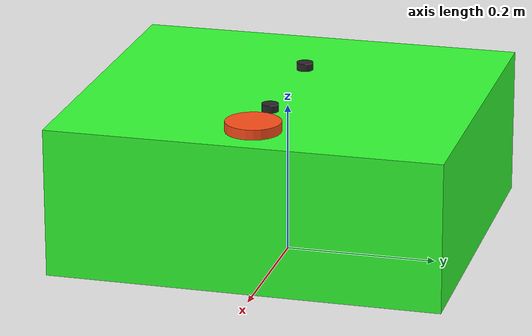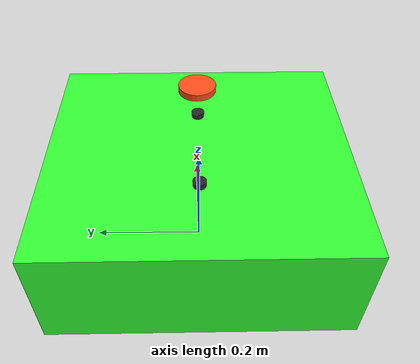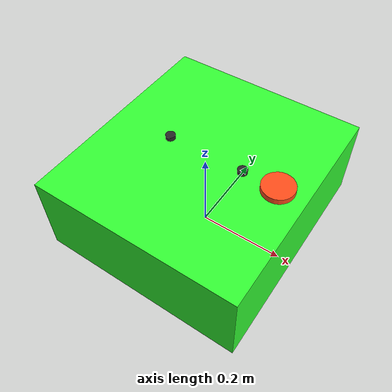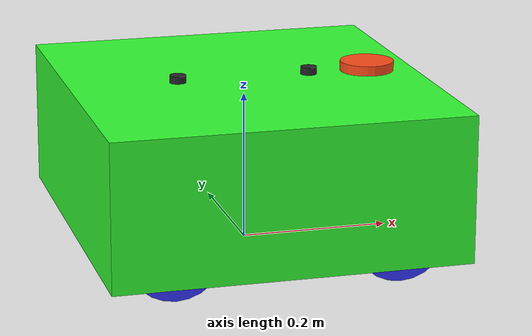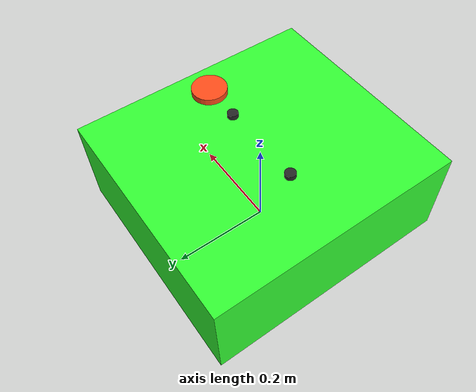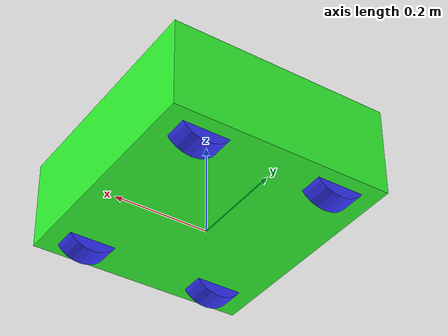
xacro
<?xml version="1.0"?>
<robot xmlns:xacro="http://www.ros.org/wiki/xacro" name="mecanum_bot">

  <xacro:include filename="color_include.xacro" />
  <xacro:include filename="robot_core.xacro" />

  <!-- Gazebo materials, sensor plugins, collision tweaks -->
  <xacro:include filename="gazebo.xacro"/>

  <!-- Gazebo control plugins (omni drive, joint state, etc.) -->
  <xacro:include filename="gazebo_control.xacro"/>

  <!-- LIDAR sensor(s): disable if not needed to reduce CPU -->
  <xacro:include filename="lidar.xacro"/>

  <xacro:include filename="IMU.xacro"/>

  <!-- Cameras: biggest performance hit; comment out to speed up simulation -->
  <xacro:include filename="camera.xacro"/>

</robot>

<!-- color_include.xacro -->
<robot xmlns:xacro="http://www.ros.org/wiki/xacro" >

    <!-- Specify some colours -->

    <material name="white">
        <color rgba="1 1 1 1"/>
    </material>

    <material name="orange">
        <color rgba="1 0.3 0.1 1"/>
    </material>

    <material name="blue">
        <color rgba="0.2 0.2 1 1"/>
    </material>

</robot>

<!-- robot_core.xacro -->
<robot xmlns:xacro="http://www.ros.org/wiki/xacro" >

    <xacro:include filename="inertial_macros.xacro"/>

	  <link name="base_link">
	    <inertial>
	      <origin xyz="0 0 0" rpy="0 0 0"/>
	      <mass value="25.0"/>
	      <inertia ixx="0.2" ixy="0.0" ixz="0.0"
		       iyy="0.2" iyz="0.0"
		       izz="0.2"/>
	    </inertial>

          <visual>
	      <origin xyz="0 0 0.1235" rpy="0 0 0"/>
	      <geometry>
	        <box size="0.472 0.515 0.196"/>
	      </geometry>
	      <material name="green">
	         <color rgba="0.2 1 0.2 1"/>
	      </material>
	  </visual>

          <!-- Retractable trolley support pins shown retracted during approach.
               Keep these visual-only until the physical actuator/joint is added. -->
          <visual>
	      <origin xyz="0.090175 0 0.2265" rpy="0 0 0"/>
	      <geometry>
	        <cylinder radius="0.011" length="0.010"/>
	      </geometry>
	      <material name="dark_grey">
	         <color rgba="0.15 0.15 0.15 1"/>
	      </material>
	  </visual>

          <visual>
	      <origin xyz="-0.090175 0 0.2265" rpy="0 0 0"/>
	      <geometry>
	        <cylinder radius="0.011" length="0.010"/>
	      </geometry>
	      <material name="dark_grey">
	         <color rgba="0.15 0.15 0.15 1"/>
	      </material>
	  </visual>

	    <!-- Simple collision box using your real robot size -->
	    <collision>
	      <origin xyz="0 0 0.1235" rpy="0 0 0"/>
	      <geometry>
		<box size="0.472 0.515 0.196"/>
	      </geometry>
	    </collision>
	  </link>

	  <!-- =========================
	       Wheels
	       ========================= -->

	  <!-- Front Left wheel -->
	  <link name="wheel_fl">
	    <visual>
	      <origin xyz="0 0 0" rpy="-1.5708 0 0"/>
	      <geometry>
                 <cylinder radius="0.0635" length="0.051"/>
              </geometry>
	      <material name="blue" />
	    </visual>
	    <collision>
	      <origin xyz="0 0 0" rpy="1.5708 0 0"/>
	      <geometry>
		<!-- wheel radius/width are placeholders -->
		<cylinder radius="0.0635" length="0.051"/>
	      </geometry>
	    </collision>
	    <inertial>
	      <origin xyz="0 0 0" rpy="0 0 0"/>
	      <mass value="0.8"/>
	      <inertia ixx="0.01" ixy="0.0" ixz="0.0"
		       iyy="0.01" iyz="0.0"
		       izz="0.01"/>
	    </inertial>
	  </link>

	  <!-- Front Right wheel -->
	  <link name="wheel_fr">
	    <visual>
	      <origin xyz="0 0 0" rpy="1.5708 0 0"/>
	      <geometry>
                 <cylinder radius="0.0635" length="0.051"/>
              </geometry>
	      <material name="blue" />
	    </visual>
	    <collision>
	      <origin xyz="0 0 0" rpy="1.5708 0 0"/>
	      <geometry>
		<cylinder radius="0.0635" length="0.051"/>
	      </geometry>
	    </collision>
	    <inertial>
	      <origin xyz="0 0 0" rpy="0 0 0"/>
	      <mass value="0.8"/>
	      <inertia ixx="0.01" ixy="0.0" ixz="0.0"
		       iyy="0.01" iyz="0.0"
		       izz="0.01"/>
	    </inertial>
	  </link>

	  <!-- Rear Left wheel -->
	  <link name="wheel_rl">
	    <visual>
	      <origin xyz="0 0 0" rpy="-1.5708 0 0"/>
	      <geometry>
                 <cylinder radius="0.0635" length="0.051"/>
              </geometry>
	      <material name="blue" />
	    </visual>
	    <collision>
	      <origin xyz="0 0 0" rpy="1.5708 0 0"/>
	      <geometry>
		<cylinder radius="0.0635" length="0.051"/>
	      </geometry>
	    </collision>
	    <inertial>
	      <origin xyz="0 0 0" rpy="0 0 0"/>
	      <mass value="0.8"/>
	      <inertia ixx="0.01" ixy="0.0" ixz="0.0"
		       iyy="0.01" iyz="0.0"
		       izz="0.01"/>
	    </inertial>
	  </link>

	  <!-- Rear Right wheel -->
	  <link name="wheel_rr">
	    <visual>
	      <origin xyz="0 0 0" rpy="1.5708 0 0"/>
	      <geometry>
                 <cylinder radius="0.0635" length="0.051"/>
              </geometry>
	      <material name="blue" />
	    </visual>
	    <collision>
	      <origin xyz="0 0 0" rpy="1.5708 0 0"/>
	      <geometry>
		<cylinder radius="0.0635" length="0.051"/>
	      </geometry>
	    </collision>
	    <inertial>
	      <origin xyz="0 0 0" rpy="0 0 0"/>
	      <mass value="0.8"/>
	      <inertia ixx="0.01" ixy="0.0" ixz="0.0"
		       iyy="0.01" iyz="0.0"
		       izz="0.01"/>
	    </inertial>
	  </link>

	  <!-- Front Left -->
	  <joint name="wheel_fl_joint" type="continuous">
	    <parent link="base_link"/>
	    <child link="wheel_fl"/>
	    <origin xyz="0.1475 0.2019 0.0635" rpy="0 0 0"/>
	    <axis xyz="0 1 0"/>
	  </joint>

	  <!-- Front Right -->
	  <joint name="wheel_fr_joint" type="continuous">
	    <parent link="base_link"/>
	    <child link="wheel_fr"/>
	    <origin xyz="-0.1475 0.2019 0.0635" rpy="0 0 0"/>
	    <axis xyz="0 1 0"/>
	  </joint>

	  <!-- Rear Left -->
	  <joint name="wheel_rl_joint" type="continuous">
	    <parent link="base_link"/>
	    <child link="wheel_rl"/>
	    <origin xyz="0.1475 -0.2019 0.0635" rpy="0 0 0"/>
	    <axis xyz="0 1 0"/>
	  </joint>

	  <!-- Rear Right -->
	  <joint name="wheel_rr_joint" type="continuous">
	    <parent link="base_link"/>
	    <child link="wheel_rr"/>
	    <origin xyz="-0.1475 -0.2019 0.0635" rpy="0 0 0"/>
	    <axis xyz="0 1 0"/>
	  </joint>

  </robot>

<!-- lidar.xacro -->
<robot xmlns:xacro="http://www.ros.org/wiki/xacro">

  <!-- =========================
         FRONT LIDAR
       ========================= -->

  <link name="lidar_left_link">
    <visual>
      <origin xyz="0 0 0" rpy="0 0 0"/>
      <geometry>
        <cylinder radius="0.03625" length="0.02"/>
      </geometry>
      <material name="orange"/>
    </visual>

    <collision>
      <geometry>
        <cylinder radius="0.03625" length="0.02"/>
      </geometry>
    </collision>

    <xacro:inertial_cylinder mass="0.1" length="0.02" radius="0.03625">
      <origin xyz="0 0 0" rpy="0 0 0"/>
    </xacro:inertial_cylinder>
  </link>

  <!-- FRONT: faces forward -->
  <joint name="lidar_left_joint" type="fixed">
    <parent link="base_link"/>
    <child link="lidar_left_link"/>
    <origin xyz="0.172 0 0.2248" rpy="0 0 0"/>
  </joint>

  <!-- =========================
         GAZEBO SENSORS
       ========================= -->

  <!-- FRONT SENSOR -->
  <gazebo reference="lidar_left_link">
    <material>Gazebo/Orange</material>

    <sensor name="laser_front" type="ray">
      <pose>0 0 0 0 0 0</pose>
      <visualize>false</visualize>
      <update_rate>10</update_rate>

      <ray>
        <scan>
          <horizontal>
            <samples>720</samples>
            <!-- 360° navigation scan for SLAM/Nav2. -->
            <min_angle>-3.14159265</min_angle>
            <max_angle> 3.14159265</max_angle>
          </horizontal>
        </scan>

        <range>
          <min>0.45</min>
          <max>12.0</max>
        </range>
      </ray>

      <plugin name="laser_front_controller" filename="libgazebo_ros_ray_sensor.so">
        <ros>
          <argument>~/out:=left/scan</argument>
        </ros>
        <output_type>sensor_msgs/LaserScan</output_type>
        <frame_name>lidar_left_link</frame_name>
      </plugin>
    </sensor>
  </gazebo>

</robot>

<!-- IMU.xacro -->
<robot xmlns:xacro="http://www.ros.org/wiki/xacro">

  <!-- =========================
         IMU (BNO055)
       ========================= -->

  <link name="imu_link">
    <visual>
      <origin xyz="0 0 0" rpy="0 0 0"/>
      <geometry>
        <box size="0.03 0.03 0.01"/>
      </geometry>
      <material name="blue"/>
    </visual>

    <collision>
      <geometry>
        <box size="0.03 0.03 0.01"/>
      </geometry>
    </collision>
  </link>

  <joint name="imu_joint" type="fixed">
    <parent link="base_link"/>
    <child link="imu_link"/>
    <origin xyz="0 0 0.15" rpy="0 0 0"/>
  </joint>

  <gazebo reference="imu_link">
    <gravity>true</gravity>
    <sensor name="imu_sensor" type="imu">
      <always_on>true</always_on>
      <update_rate>100</update_rate>
      <visualize>true</visualize>
      <topic>__default_topic__</topic>
      <plugin filename="libgazebo_ros_imu_sensor.so" name="imu_plugin">
        <topicName>imu</topicName>
        <bodyName>imu_link</bodyName>
        <updateRateHZ>100.0</updateRateHZ>
        <gaussianNoise>0.0001</gaussianNoise>
        <xyzOffset>0 0 0</xyzOffset>
        <rpyOffset>0 0 0</rpyOffset>
        <frameName>imu_link</frameName>
        <initialOrientationAsReference>true</initialOrientationAsReference>
      </plugin>
      <pose>0 0 0 0 0 0</pose>
    </sensor>
  </gazebo>

</robot>

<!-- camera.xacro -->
<robot xmlns:xacro="http://www.ros.org/wiki/xacro">

  <joint name="camera_front" type="fixed">
    <parent link="base_link"/>
    <child link="camera_front_link"/>
    <origin xyz="0.23314 0 0.06986" rpy="0 -0.436332 0"/>
  </joint>

  <link name="camera_front_link"></link>

  <joint name="camera_front_optical" type="fixed">
    <parent link="camera_front_link"/>
    <child link="camera_front_optical_link"/>
    <origin xyz="0 0 0" rpy="-1.5708 0 -1.5708"/>

  </joint>

  <link name="camera_front_optical_link"></link>

  <gazebo reference="camera_front_link">
   	<sensor name="camera_front" type="camera">
	  <pose>0 0 0 0 0 0</pose>
	  <visualize>true</visualize>
	  <update_rate>10</update_rate>
	  <camera>
	    <horizontal_fov>1.422</horizontal_fov>
	    <image>
	      <format>R8G8B8</format>
	      <width>480</width>
	      <height>640</height>
	    </image>
	    <clip>
	      <near>0.05</near>
	      <far>8.0</far>
	    </clip>
	  </camera>
	  <plugin name="camera_front_controller" filename="libgazebo_ros_camera.so">
	    <frame_name>camera_front_optical_link</frame_name>
	  </plugin>
	</sensor>

    </gazebo>

  <!-- REAR CAMERA (same settings, rotated 180° to look backwards) -->
  <joint name="camera_rear" type="fixed">
    <parent link="base_link"/>
    <child link="camera_rear_link"/>
    <!-- same xyz, yaw flipped by +pi -->
    <origin xyz="-0.23314 0 0.06986" rpy="0 -0.436332 3.14159265"/>
  </joint>

  <link name="camera_rear_link"></link>

  <joint name="camera_rear_optical" type="fixed">
    <parent link="camera_rear_link"/>
    <child link="camera_rear_optical_link"/>
    <origin xyz="0 0 0" rpy="-1.5708 0 -1.5708"/>
  </joint>

  <link name="camera_rear_optical_link"></link>

  <gazebo reference="camera_rear_link">
     <sensor name="camera_rear" type="camera">
      <pose>0 0 0 0 0 0</pose>
      <visualize>true</visualize>
      <update_rate>10</update_rate>
      <camera>
        <horizontal_fov>1.422</horizontal_fov>
        <image>
          <format>R8G8B8</format>
          <width>480</width>
          <height>640</height>
        </image>
        <clip>
          <near>0.05</near>
          <far>8.0</far>
        </clip>
      </camera>
      <plugin name="camera_rear_controller" filename="libgazebo_ros_camera.so">
        <frame_name>camera_rear_optical_link</frame_name>
      </plugin>
    </sensor>
  </gazebo>

<!-- LEFT CAMERA (landscape, looks left) -->
<joint name="camera_left" type="fixed">
  <parent link="base_link"/>
  <child link="camera_left_link"/>
  <!-- x=0, y=+0.25591 (left), z same; pitch -15deg, yaw +90deg -->
  <origin xyz="0 0.25591 0.07175" rpy="0 -0.261799 1.5708"/>
</joint>

<link name="camera_left_link"></link>

<joint name="camera_left_optical" type="fixed">
  <parent link="camera_left_link"/>
  <child link="camera_left_optical_link"/>
  <origin xyz="0 0 0" rpy="-1.5708 0 -1.5708"/>
</joint>

<link name="camera_left_optical_link"></link>

<gazebo reference="camera_left_link">
  <sensor name="camera_left" type="camera">
    <pose>0 0 0 0 0 0</pose>
    <visualize>false</visualize>
    <update_rate>10</update_rate>
    <camera>
      <horizontal_fov>1.422</horizontal_fov>
      <image>
        <format>R8G8B8</format>
        <width>320</width>
        <height>240</height>
      </image>
      <clip>
        <near>0.05</near>
        <far>8.0</far>
      </clip>
    </camera>
    <plugin name="camera_left_controller" filename="libgazebo_ros_camera.so">
      <frame_name>camera_left_optical_link</frame_name>
    </plugin>
  </sensor>
</gazebo>

<!-- RIGHT CAMERA (landscape, looks right) -->
<joint name="camera_right" type="fixed">
  <parent link="base_link"/>
  <child link="camera_right_link"/>
  <!-- x=0, y=-0.25591 (right), z same; pitch -15deg, yaw -90deg -->
  <origin xyz="0 -0.25591 0.07175" rpy="0 -0.261799 -1.5708"/>
</joint>

<link name="camera_right_link"></link>

<joint name="camera_right_optical" type="fixed">
  <parent link="camera_right_link"/>
  <child link="camera_right_optical_link"/>
  <origin xyz="0 0 0" rpy="-1.5708 0 -1.5708"/>
</joint>

<link name="camera_right_optical_link"></link>

<gazebo reference="camera_right_link">
  <sensor name="camera_right" type="camera">
    <pose>0 0 0 0 0 0</pose>
    <visualize>false</visualize>
    <update_rate>10</update_rate>
    <camera>
      <horizontal_fov>1.422</horizontal_fov>
      <image>
        <format>R8G8B8</format>
        <width>320</width>
        <height>240</height>
      </image>
      <clip>
        <near>0.05</near>
        <far>8.0</far>
      </clip>
    </camera>
    <plugin name="camera_right_controller" filename="libgazebo_ros_camera.so">
      <frame_name>camera_right_optical_link</frame_name>
    </plugin>
  </sensor>
</gazebo>

</robot>
